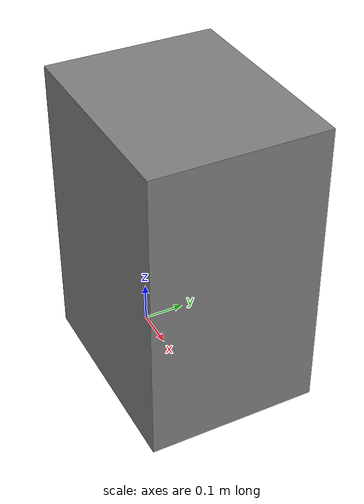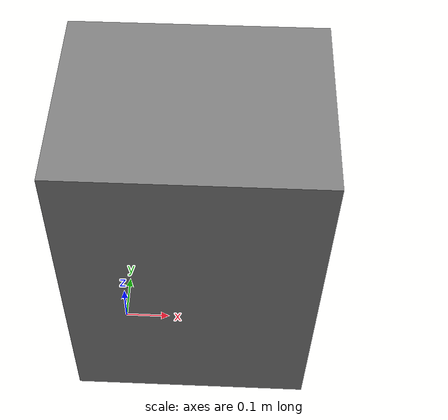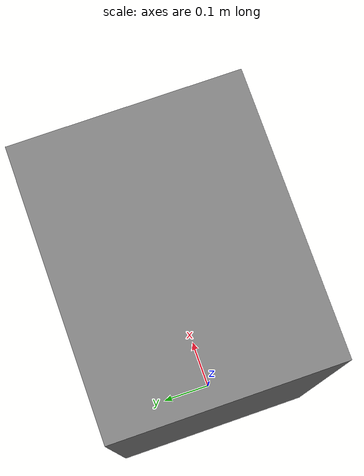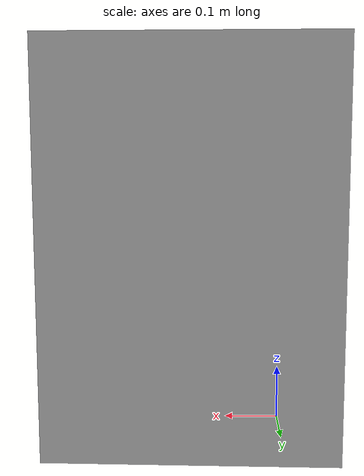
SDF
<?xml version='1.0'?>
<sdf version='1.4'>

  <model name="davinci_table">
    <static>true</static>
    <link name='link'>
      <pose>0.16 0.02 0.35 0 0 0</pose>
      <inertial>
        <mass>1</mass>
        <inertia>
          <ixx>1</ixx>
          <ixy>0</ixy>
          <ixz>0</ixz>
          <iyy>1</iyy>
          <iyz>0</iyz>
          <izz>1</izz>
        </inertia>
      </inertial>
     <collision name='collision'>
        <geometry>
          <box>
            <size>0.5 0.4 0.7</size>
          </box>
        </geometry>
      </collision>

      <visual name='visual'>
        <geometry>
          <box>
             <size>0.5 0.4 0.7</size>
          </box>
        </geometry>
        <material>
            <ambient>0.5 0.5 0.5 1</ambient>
            <diffuse>0.5 0.5 0.5 1</diffuse>
            <specular>0.1 0.1 0.1 1</specular>
            <emissive>0 0 0 0</emissive>
        </material>
      </visual>
    </link>
  </model>
</sdf>
